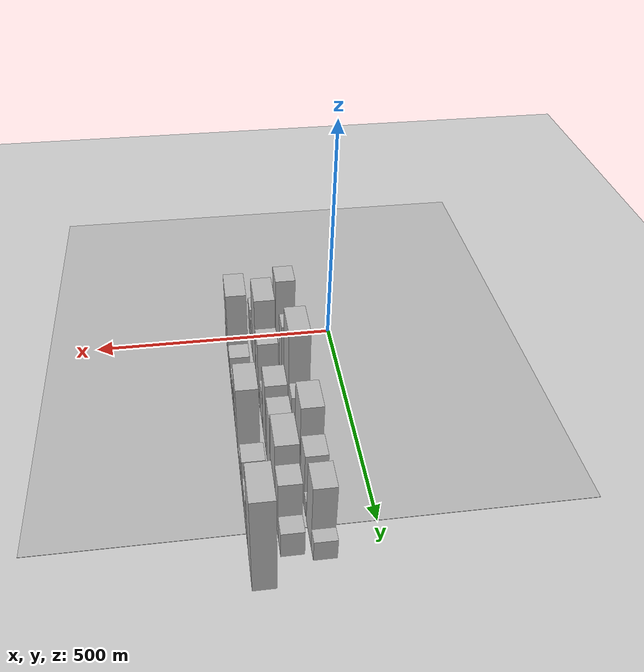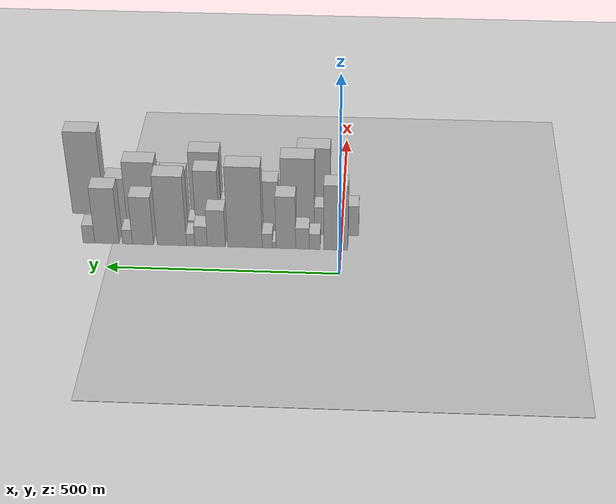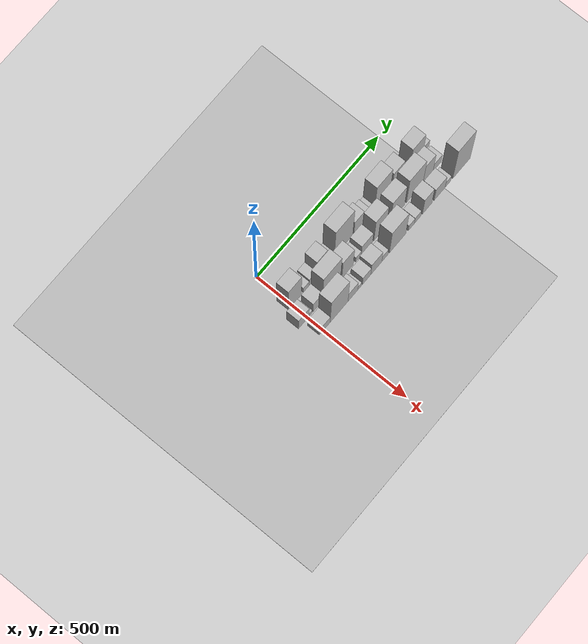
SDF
<sdf version="1.6">
 <world name="default">
  <include><name>ground_plane_1</name><uri>model://HANNAS_ground_plane</uri></include>
  <include>
   <name>ground_plane_2</name>
   <uri>model://HANNAS_ground_plane</uri>
   <pose>100 0 0  0 0 0</pose>
  </include>
  <model name="building_16">
   <static>1</static>
   <pose>100.0000 10.8693 0 0.000000 0.000000 0.000000</pose>
   <link name="link">
    <pose>0 0 87.00 0 0 0</pose>
    <collision name="collision"><geometry><box><size>40.0000 52.2997 174.0000</size></box></geometry></collision>
    <visual name="visual">
     <cast_shadows>0</cast_shadows>
     <geometry><box><size>40.0000 52.2997 174.0000</size></box></geometry>
     <material>
      <script>
       <uri>model://HANNAS_wall/materials/scripts</uri>
       <uri>model://HANNAS_wall/materials/textures</uri>
       <name>vrc/HANNAS_wall</name>
      </script>
     </material>
    </visual>
   </link>
  </model>
  <model name="building_17">
   <static>1</static>
   <pose>100.0000 56.9608 0 0.000000 0.000000 0.000000</pose>
   <link name="link">
    <pose>0 0 21.00 0 0 0</pose>
    <collision name="collision"><geometry><box><size>40.0000 23.8834 42.0000</size></box></geometry></collision>
    <visual name="visual">
     <cast_shadows>0</cast_shadows>
     <geometry><box><size>40.0000 23.8834 42.0000</size></box></geometry>
     <material>
      <script>
       <uri>model://HANNAS_wall/materials/scripts</uri>
       <uri>model://HANNAS_wall/materials/textures</uri>
       <name>vrc/HANNAS_wall</name>
      </script>
     </material>
    </visual>
   </link>
  </model>
  <model name="building_18">
   <static>1</static>
   <pose>100.0000 83.5557 0 0.000000 0.000000 0.000000</pose>
   <link name="link">
    <pose>0 0 28.50 0 0 0</pose>
    <collision name="collision"><geometry><box><size>40.0000 29.3063 57.0000</size></box></geometry></collision>
    <visual name="visual">
     <cast_shadows>0</cast_shadows>
     <geometry><box><size>40.0000 29.3063 57.0000</size></box></geometry>
     <material>
      <script>
       <uri>model://HANNAS_wall/materials/scripts</uri>
       <uri>model://HANNAS_wall/materials/textures</uri>
       <name>vrc/HANNAS_wall</name>
      </script>
     </material>
    </visual>
   </link>
  </model>
  <model name="building_19">
   <static>1</static>
   <pose>100.0000 119.6079 0 0.000000 0.000000 0.000000</pose>
   <link name="link">
    <pose>0 0 70.50 0 0 0</pose>
    <collision name="collision"><geometry><box><size>40.0000 42.7981 141.0000</size></box></geometry></collision>
    <visual name="visual">
     <cast_shadows>0</cast_shadows>
     <geometry><box><size>40.0000 42.7981 141.0000</size></box></geometry>
     <material>
      <script>
       <uri>model://HANNAS_wall/materials/scripts</uri>
       <uri>model://HANNAS_wall/materials/textures</uri>
       <name>vrc/HANNAS_wall</name>
      </script>
     </material>
    </visual>
   </link>
  </model>
  <model name="building_20">
   <static>1</static>
   <pose>100.0000 144.9795 0 0.000000 0.000000 0.000000</pose>
   <link name="link">
    <pose>0 0 9.00 0 0 0</pose>
    <collision name="collision"><geometry><box><size>40.0000 7.9451 18.0000</size></box></geometry></collision>
    <visual name="visual">
     <cast_shadows>0</cast_shadows>
     <geometry><box><size>40.0000 7.9451 18.0000</size></box></geometry>
     <material>
      <script>
       <uri>model://HANNAS_wall/materials/scripts</uri>
       <uri>model://HANNAS_wall/materials/textures</uri>
       <name>vrc/HANNAS_wall</name>
      </script>
     </material>
    </visual>
   </link>
  </model>
  <model name="building_21">
   <static>1</static>
   <pose>100.0000 160.0698 0 0.000000 0.000000 0.000000</pose>
   <link name="link">
    <pose>0 0 19.50 0 0 0</pose>
    <collision name="collision"><geometry><box><size>40.0000 22.2356 39.0000</size></box></geometry></collision>
    <visual name="visual">
     <cast_shadows>0</cast_shadows>
     <geometry><box><size>40.0000 22.2356 39.0000</size></box></geometry>
     <material>
      <script>
       <uri>model://HANNAS_wall/materials/scripts</uri>
       <uri>model://HANNAS_wall/materials/textures</uri>
       <name>vrc/HANNAS_wall</name>
      </script>
     </material>
    </visual>
   </link>
  </model>
  <model name="building_22">
   <static>1</static>
   <pose>100.0000 208.9474 0 0.000000 0.000000 0.000000</pose>
   <link name="link">
    <pose>0 0 108.00 0 0 0</pose>
    <collision name="collision"><geometry><box><size>40.0000 75.5195 216.0000</size></box></geometry></collision>
    <visual name="visual">
     <cast_shadows>0</cast_shadows>
     <geometry><box><size>40.0000 75.5195 216.0000</size></box></geometry>
     <material>
      <script>
       <uri>model://HANNAS_wall/materials/scripts</uri>
       <uri>model://HANNAS_wall/materials/textures</uri>
       <name>vrc/HANNAS_wall</name>
      </script>
     </material>
    </visual>
   </link>
  </model>
  <model name="building_23">
   <static>1</static>
   <pose>100.0000 271.4195 0 0.000000 0.000000 0.000000</pose>
   <link name="link">
    <pose>0 0 49.50 0 0 0</pose>
    <collision name="collision"><geometry><box><size>40.0000 39.4247 99.0000</size></box></geometry></collision>
    <visual name="visual">
     <cast_shadows>0</cast_shadows>
     <geometry><box><size>40.0000 39.4247 99.0000</size></box></geometry>
     <material>
      <script>
       <uri>model://HANNAS_wall/materials/scripts</uri>
       <uri>model://HANNAS_wall/materials/textures</uri>
       <name>vrc/HANNAS_wall</name>
      </script>
     </material>
    </visual>
   </link>
  </model>
  <model name="building_24">
   <static>1</static>
   <pose>100.0000 305.1238 0 0.000000 0.000000 0.000000</pose>
   <link name="link">
    <pose>0 0 27.00 0 0 0</pose>
    <collision name="collision"><geometry><box><size>40.0000 27.9839 54.0000</size></box></geometry></collision>
    <visual name="visual">
     <cast_shadows>0</cast_shadows>
     <geometry><box><size>40.0000 27.9839 54.0000</size></box></geometry>
     <material>
      <script>
       <uri>model://HANNAS_wall/materials/scripts</uri>
       <uri>model://HANNAS_wall/materials/textures</uri>
       <name>vrc/HANNAS_wall</name>
      </script>
     </material>
    </visual>
   </link>
  </model>
  <model name="building_25">
   <static>1</static>
   <pose>100.0000 328.0270 0 0.000000 0.000000 0.000000</pose>
   <link name="link">
    <pose>0 0 16.50 0 0 0</pose>
    <collision name="collision"><geometry><box><size>40.0000 17.8224 33.0000</size></box></geometry></collision>
    <visual name="visual">
     <cast_shadows>0</cast_shadows>
     <geometry><box><size>40.0000 17.8224 33.0000</size></box></geometry>
     <material>
      <script>
       <uri>model://HANNAS_wall/materials/scripts</uri>
       <uri>model://HANNAS_wall/materials/textures</uri>
       <name>vrc/HANNAS_wall</name>
      </script>
     </material>
    </visual>
   </link>
  </model>
  <model name="building_26">
   <static>1</static>
   <pose>100.0000 369.1102 0 0.000000 0.000000 0.000000</pose>
   <link name="link">
    <pose>0 0 93.00 0 0 0</pose>
    <collision name="collision"><geometry><box><size>40.0000 64.3441 186.0000</size></box></geometry></collision>
    <visual name="visual">
     <cast_shadows>0</cast_shadows>
     <geometry><box><size>40.0000 64.3441 186.0000</size></box></geometry>
     <material>
      <script>
       <uri>model://HANNAS_wall/materials/scripts</uri>
       <uri>model://HANNAS_wall/materials/textures</uri>
       <name>vrc/HANNAS_wall</name>
      </script>
     </material>
    </visual>
   </link>
  </model>
  <model name="building_27">
   <static>1</static>
   <pose>100.0000 432.4711 0 0.000000 0.000000 0.000000</pose>
   <link name="link">
    <pose>0 0 64.50 0 0 0</pose>
    <collision name="collision"><geometry><box><size>40.0000 46.3777 129.0000</size></box></geometry></collision>
    <visual name="visual">
     <cast_shadows>0</cast_shadows>
     <geometry><box><size>40.0000 46.3777 129.0000</size></box></geometry>
     <material>
      <script>
       <uri>model://HANNAS_wall/materials/scripts</uri>
       <uri>model://HANNAS_wall/materials/textures</uri>
       <name>vrc/HANNAS_wall</name>
      </script>
     </material>
    </visual>
   </link>
  </model>
  <model name="building_28">
   <static>1</static>
   <pose>100.0000 466.4804 0 0.000000 0.000000 0.000000</pose>
   <link name="link">
    <pose>0 0 19.50 0 0 0</pose>
    <collision name="collision"><geometry><box><size>40.0000 21.6409 39.0000</size></box></geometry></collision>
    <visual name="visual">
     <cast_shadows>0</cast_shadows>
     <geometry><box><size>40.0000 21.6409 39.0000</size></box></geometry>
     <material>
      <script>
       <uri>model://HANNAS_wall/materials/scripts</uri>
       <uri>model://HANNAS_wall/materials/textures</uri>
       <name>vrc/HANNAS_wall</name>
      </script>
     </material>
    </visual>
   </link>
  </model>
  <model name="building_29">
   <static>1</static>
   <pose>100.0000 511.8873 0 0.000000 0.000000 0.000000</pose>
   <link name="link">
    <pose>0 0 75.00 0 0 0</pose>
    <collision name="collision"><geometry><box><size>40.0000 53.1729 150.0000</size></box></geometry></collision>
    <visual name="visual">
     <cast_shadows>0</cast_shadows>
     <geometry><box><size>40.0000 53.1729 150.0000</size></box></geometry>
     <material>
      <script>
       <uri>model://HANNAS_wall/materials/scripts</uri>
       <uri>model://HANNAS_wall/materials/textures</uri>
       <name>vrc/HANNAS_wall</name>
      </script>
     </material>
    </visual>
   </link>
  </model>
  <model name="building_30">
   <static>1</static>
   <pose>100.0000 551.2368 0 0.000000 0.000000 0.000000</pose>
   <link name="link">
    <pose>0 0 24.00 0 0 0</pose>
    <collision name="collision"><geometry><box><size>40.0000 25.5261 48.0000</size></box></geometry></collision>
    <visual name="visual">
     <cast_shadows>0</cast_shadows>
     <geometry><box><size>40.0000 25.5261 48.0000</size></box></geometry>
     <material>
      <script>
       <uri>model://HANNAS_wall/materials/scripts</uri>
       <uri>model://HANNAS_wall/materials/textures</uri>
       <name>vrc/HANNAS_wall</name>
      </script>
     </material>
    </visual>
   </link>
  </model>
  <model name="building_46">
   <static>1</static>
   <pose>152.0000 -15.9616 0 0.000000 0.000000 0.000000</pose>
   <link name="link">
    <pose>0 0 40.50 0 0 0</pose>
    <collision name="collision"><geometry><box><size>40.0000 42.7795 81.0000</size></box></geometry></collision>
    <visual name="visual">
     <cast_shadows>0</cast_shadows>
     <geometry><box><size>40.0000 42.7795 81.0000</size></box></geometry>
     <material>
      <script>
       <uri>model://HANNAS_wall/materials/scripts</uri>
       <uri>model://HANNAS_wall/materials/textures</uri>
       <name>vrc/HANNAS_wall</name>
      </script>
     </material>
    </visual>
   </link>
  </model>
  <model name="building_47">
   <static>1</static>
   <pose>152.0000 11.9285 0 0.000000 0.000000 0.000000</pose>
   <link name="link">
    <pose>0 0 13.50 0 0 0</pose>
    <collision name="collision"><geometry><box><size>40.0000 13.0005 27.0000</size></box></geometry></collision>
    <visual name="visual">
     <cast_shadows>0</cast_shadows>
     <geometry><box><size>40.0000 13.0005 27.0000</size></box></geometry>
     <material>
      <script>
       <uri>model://HANNAS_wall/materials/scripts</uri>
       <uri>model://HANNAS_wall/materials/textures</uri>
       <name>vrc/HANNAS_wall</name>
      </script>
     </material>
    </visual>
   </link>
  </model>
  <model name="building_48">
   <static>1</static>
   <pose>152.0000 40.6901 0 0.000000 0.000000 0.000000</pose>
   <link name="link">
    <pose>0 0 37.50 0 0 0</pose>
    <collision name="collision"><geometry><box><size>40.0000 38.5228 75.0000</size></box></geometry></collision>
    <visual name="visual">
     <cast_shadows>0</cast_shadows>
     <geometry><box><size>40.0000 38.5228 75.0000</size></box></geometry>
     <material>
      <script>
       <uri>model://HANNAS_wall/materials/scripts</uri>
       <uri>model://HANNAS_wall/materials/textures</uri>
       <name>vrc/HANNAS_wall</name>
      </script>
     </material>
    </visual>
   </link>
  </model>
  <model name="building_49">
   <static>1</static>
   <pose>152.0000 96.4202 0 0.000000 0.000000 0.000000</pose>
   <link name="link">
    <pose>0 0 102.00 0 0 0</pose>
    <collision name="collision"><geometry><box><size>40.0000 72.9375 204.0000</size></box></geometry></collision>
    <visual name="visual">
     <cast_shadows>0</cast_shadows>
     <geometry><box><size>40.0000 72.9375 204.0000</size></box></geometry>
     <material>
      <script>
       <uri>model://HANNAS_wall/materials/scripts</uri>
       <uri>model://HANNAS_wall/materials/textures</uri>
       <name>vrc/HANNAS_wall</name>
      </script>
     </material>
    </visual>
   </link>
  </model>
  <model name="building_50">
   <static>1</static>
   <pose>152.0000 162.1256 0 0.000000 0.000000 0.000000</pose>
   <link name="link">
    <pose>0 0 70.50 0 0 0</pose>
    <collision name="collision"><geometry><box><size>40.0000 46.4732 141.0000</size></box></geometry></collision>
    <visual name="visual">
     <cast_shadows>0</cast_shadows>
     <geometry><box><size>40.0000 46.4732 141.0000</size></box></geometry>
     <material>
      <script>
       <uri>model://HANNAS_wall/materials/scripts</uri>
       <uri>model://HANNAS_wall/materials/textures</uri>
       <name>vrc/HANNAS_wall</name>
      </script>
     </material>
    </visual>
   </link>
  </model>
  <model name="building_51">
   <static>1</static>
   <pose>152.0000 206.7316 0 0.000000 0.000000 0.000000</pose>
   <link name="link">
    <pose>0 0 19.50 0 0 0</pose>
    <collision name="collision"><geometry><box><size>40.0000 22.7387 39.0000</size></box></geometry></collision>
    <visual name="visual">
     <cast_shadows>0</cast_shadows>
     <geometry><box><size>40.0000 22.7387 39.0000</size></box></geometry>
     <material>
      <script>
       <uri>model://HANNAS_wall/materials/scripts</uri>
       <uri>model://HANNAS_wall/materials/textures</uri>
       <name>vrc/HANNAS_wall</name>
      </script>
     </material>
    </visual>
   </link>
  </model>
  <model name="building_52">
   <static>1</static>
   <pose>152.0000 241.5072 0 0.000000 0.000000 0.000000</pose>
   <link name="link">
    <pose>0 0 40.50 0 0 0</pose>
    <collision name="collision"><geometry><box><size>40.0000 46.8126 81.0000</size></box></geometry></collision>
    <visual name="visual">
     <cast_shadows>0</cast_shadows>
     <geometry><box><size>40.0000 46.8126 81.0000</size></box></geometry>
     <material>
      <script>
       <uri>model://HANNAS_wall/materials/scripts</uri>
       <uri>model://HANNAS_wall/materials/textures</uri>
       <name>vrc/HANNAS_wall</name>
      </script>
     </material>
    </visual>
   </link>
  </model>
  <model name="building_53">
   <static>1</static>
   <pose>152.0000 295.9425 0 0.000000 0.000000 0.000000</pose>
   <link name="link">
    <pose>0 0 82.50 0 0 0</pose>
    <collision name="collision"><geometry><box><size>40.0000 52.0578 165.0000</size></box></geometry></collision>
    <visual name="visual">
     <cast_shadows>0</cast_shadows>
     <geometry><box><size>40.0000 52.0578 165.0000</size></box></geometry>
     <material>
      <script>
       <uri>model://HANNAS_wall/materials/scripts</uri>
       <uri>model://HANNAS_wall/materials/textures</uri>
       <name>vrc/HANNAS_wall</name>
      </script>
     </material>
    </visual>
   </link>
  </model>
  <model name="building_54">
   <static>1</static>
   <pose>152.0000 330.5413 0 0.000000 0.000000 0.000000</pose>
   <link name="link">
    <pose>0 0 15.00 0 0 0</pose>
    <collision name="collision"><geometry><box><size>40.0000 17.1399 30.0000</size></box></geometry></collision>
    <visual name="visual">
     <cast_shadows>0</cast_shadows>
     <geometry><box><size>40.0000 17.1399 30.0000</size></box></geometry>
     <material>
      <script>
       <uri>model://HANNAS_wall/materials/scripts</uri>
       <uri>model://HANNAS_wall/materials/textures</uri>
       <name>vrc/HANNAS_wall</name>
      </script>
     </material>
    </visual>
   </link>
  </model>
  <model name="building_55">
   <static>1</static>
   <pose>152.0000 368.0218 0 0.000000 0.000000 0.000000</pose>
   <link name="link">
    <pose>0 0 78.00 0 0 0</pose>
    <collision name="collision"><geometry><box><size>40.0000 57.8211 156.0000</size></box></geometry></collision>
    <visual name="visual">
     <cast_shadows>0</cast_shadows>
     <geometry><box><size>40.0000 57.8211 156.0000</size></box></geometry>
     <material>
      <script>
       <uri>model://HANNAS_wall/materials/scripts</uri>
       <uri>model://HANNAS_wall/materials/textures</uri>
       <name>vrc/HANNAS_wall</name>
      </script>
     </material>
    </visual>
   </link>
  </model>
  <model name="building_56">
   <static>1</static>
   <pose>152.0000 439.4487 0 0.000000 0.000000 0.000000</pose>
   <link name="link">
    <pose>0 0 91.50 0 0 0</pose>
    <collision name="collision"><geometry><box><size>40.0000 69.0328 183.0000</size></box></geometry></collision>
    <visual name="visual">
     <cast_shadows>0</cast_shadows>
     <geometry><box><size>40.0000 69.0328 183.0000</size></box></geometry>
     <material>
      <script>
       <uri>model://HANNAS_wall/materials/scripts</uri>
       <uri>model://HANNAS_wall/materials/textures</uri>
       <name>vrc/HANNAS_wall</name>
      </script>
     </material>
    </visual>
   </link>
  </model>
  <model name="building_57">
   <static>1</static>
   <pose>152.0000 494.9462 0 0.000000 0.000000 0.000000</pose>
   <link name="link">
    <pose>0 0 69.00 0 0 0</pose>
    <collision name="collision"><geometry><box><size>40.0000 41.9621 138.0000</size></box></geometry></collision>
    <visual name="visual">
     <cast_shadows>0</cast_shadows>
     <geometry><box><size>40.0000 41.9621 138.0000</size></box></geometry>
     <material>
      <script>
       <uri>model://HANNAS_wall/materials/scripts</uri>
       <uri>model://HANNAS_wall/materials/textures</uri>
       <name>vrc/HANNAS_wall</name>
      </script>
     </material>
    </visual>
   </link>
  </model>
  <model name="building_58">
   <static>1</static>
   <pose>152.0000 533.2655 0 0.000000 0.000000 0.000000</pose>
   <link name="link">
    <pose>0 0 30.00 0 0 0</pose>
    <collision name="collision"><geometry><box><size>40.0000 34.6766 60.0000</size></box></geometry></collision>
    <visual name="visual">
     <cast_shadows>0</cast_shadows>
     <geometry><box><size>40.0000 34.6766 60.0000</size></box></geometry>
     <material>
      <script>
       <uri>model://HANNAS_wall/materials/scripts</uri>
       <uri>model://HANNAS_wall/materials/textures</uri>
       <name>vrc/HANNAS_wall</name>
      </script>
     </material>
    </visual>
   </link>
  </model>
  <model name="building_73">
   <static>1</static>
   <pose>204.0000 -10.4134 0 0.000000 0.000000 0.000000</pose>
   <link name="link">
    <pose>0 0 12.00 0 0 0</pose>
    <collision name="collision"><geometry><box><size>40.0000 10.3255 24.0000</size></box></geometry></collision>
    <visual name="visual">
     <cast_shadows>0</cast_shadows>
     <geometry><box><size>40.0000 10.3255 24.0000</size></box></geometry>
     <material>
      <script>
       <uri>model://HANNAS_wall/materials/scripts</uri>
       <uri>model://HANNAS_wall/materials/textures</uri>
       <name>vrc/HANNAS_wall</name>
      </script>
     </material>
    </visual>
   </link>
  </model>
  <model name="building_74">
   <static>1</static>
   <pose>204.0000 11.2459 0 0.000000 0.000000 0.000000</pose>
   <link name="link">
    <pose>0 0 28.50 0 0 0</pose>
    <collision name="collision"><geometry><box><size>40.0000 32.9931 57.0000</size></box></geometry></collision>
    <visual name="visual">
     <cast_shadows>0</cast_shadows>
     <geometry><box><size>40.0000 32.9931 57.0000</size></box></geometry>
     <material>
      <script>
       <uri>model://HANNAS_wall/materials/scripts</uri>
       <uri>model://HANNAS_wall/materials/textures</uri>
       <name>vrc/HANNAS_wall</name>
      </script>
     </material>
    </visual>
   </link>
  </model>
  <model name="building_75">
   <static>1</static>
   <pose>204.0000 63.8894 0 0.000000 0.000000 0.000000</pose>
   <link name="link">
    <pose>0 0 97.50 0 0 0</pose>
    <collision name="collision"><geometry><box><size>40.0000 72.2939 195.0000</size></box></geometry></collision>
    <visual name="visual">
     <cast_shadows>0</cast_shadows>
     <geometry><box><size>40.0000 72.2939 195.0000</size></box></geometry>
     <material>
      <script>
       <uri>model://HANNAS_wall/materials/scripts</uri>
       <uri>model://HANNAS_wall/materials/textures</uri>
       <name>vrc/HANNAS_wall</name>
      </script>
     </material>
    </visual>
   </link>
  </model>
  <model name="building_76">
   <static>1</static>
   <pose>204.0000 120.1993 0 0.000000 0.000000 0.000000</pose>
   <link name="link">
    <pose>0 0 36.00 0 0 0</pose>
    <collision name="collision"><geometry><box><size>40.0000 40.3258 72.0000</size></box></geometry></collision>
    <visual name="visual">
     <cast_shadows>0</cast_shadows>
     <geometry><box><size>40.0000 40.3258 72.0000</size></box></geometry>
     <material>
      <script>
       <uri>model://HANNAS_wall/materials/scripts</uri>
       <uri>model://HANNAS_wall/materials/textures</uri>
       <name>vrc/HANNAS_wall</name>
      </script>
     </material>
    </visual>
   </link>
  </model>
  <model name="building_77">
   <static>1</static>
   <pose>204.0000 148.2552 0 0.000000 0.000000 0.000000</pose>
   <link name="link">
    <pose>0 0 15.00 0 0 0</pose>
    <collision name="collision"><geometry><box><size>40.0000 15.7862 30.0000</size></box></geometry></collision>
    <visual name="visual">
     <cast_shadows>0</cast_shadows>
     <geometry><box><size>40.0000 15.7862 30.0000</size></box></geometry>
     <material>
      <script>
       <uri>model://HANNAS_wall/materials/scripts</uri>
       <uri>model://HANNAS_wall/materials/textures</uri>
       <name>vrc/HANNAS_wall</name>
      </script>
     </material>
    </visual>
   </link>
  </model>
  <model name="building_78">
   <static>1</static>
   <pose>204.0000 176.3835 0 0.000000 0.000000 0.000000</pose>
   <link name="link">
    <pose>0 0 31.50 0 0 0</pose>
    <collision name="collision"><geometry><box><size>40.0000 34.4703 63.0000</size></box></geometry></collision>
    <visual name="visual">
     <cast_shadows>0</cast_shadows>
     <geometry><box><size>40.0000 34.4703 63.0000</size></box></geometry>
     <material>
      <script>
       <uri>model://HANNAS_wall/materials/scripts</uri>
       <uri>model://HANNAS_wall/materials/textures</uri>
       <name>vrc/HANNAS_wall</name>
      </script>
     </material>
    </visual>
   </link>
  </model>
  <model name="building_79">
   <static>1</static>
   <pose>204.0000 216.2301 0 0.000000 0.000000 0.000000</pose>
   <link name="link">
    <pose>0 0 45.00 0 0 0</pose>
    <collision name="collision"><geometry><box><size>40.0000 45.2229 90.0000</size></box></geometry></collision>
    <visual name="visual">
     <cast_shadows>0</cast_shadows>
     <geometry><box><size>40.0000 45.2229 90.0000</size></box></geometry>
     <material>
      <script>
       <uri>model://HANNAS_wall/materials/scripts</uri>
       <uri>model://HANNAS_wall/materials/textures</uri>
       <name>vrc/HANNAS_wall</name>
      </script>
     </material>
    </visual>
   </link>
  </model>
  <model name="building_80">
   <static>1</static>
   <pose>204.0000 251.4858 0 0.000000 0.000000 0.000000</pose>
   <link name="link">
    <pose>0 0 24.00 0 0 0</pose>
    <collision name="collision"><geometry><box><size>40.0000 25.2884 48.0000</size></box></geometry></collision>
    <visual name="visual">
     <cast_shadows>0</cast_shadows>
     <geometry><box><size>40.0000 25.2884 48.0000</size></box></geometry>
     <material>
      <script>
       <uri>model://HANNAS_wall/materials/scripts</uri>
       <uri>model://HANNAS_wall/materials/textures</uri>
       <name>vrc/HANNAS_wall</name>
      </script>
     </material>
    </visual>
   </link>
  </model>
  <model name="building_81">
   <static>1</static>
   <pose>204.0000 304.1415 0 0.000000 0.000000 0.000000</pose>
   <link name="link">
    <pose>0 0 88.50 0 0 0</pose>
    <collision name="collision"><geometry><box><size>40.0000 68.0230 177.0000</size></box></geometry></collision>
    <visual name="visual">
     <cast_shadows>0</cast_shadows>
     <geometry><box><size>40.0000 68.0230 177.0000</size></box></geometry>
     <material>
      <script>
       <uri>model://HANNAS_wall/materials/scripts</uri>
       <uri>model://HANNAS_wall/materials/textures</uri>
       <name>vrc/HANNAS_wall</name>
      </script>
     </material>
    </visual>
   </link>
  </model>
  <model name="building_82">
   <static>1</static>
   <pose>204.0000 360.9715 0 0.000000 0.000000 0.000000</pose>
   <link name="link">
    <pose>0 0 22.50 0 0 0</pose>
    <collision name="collision"><geometry><box><size>40.0000 25.6371 45.0000</size></box></geometry></collision>
    <visual name="visual">
     <cast_shadows>0</cast_shadows>
     <geometry><box><size>40.0000 25.6371 45.0000</size></box></geometry>
     <material>
      <script>
       <uri>model://HANNAS_wall/materials/scripts</uri>
       <uri>model://HANNAS_wall/materials/textures</uri>
       <name>vrc/HANNAS_wall</name>
      </script>
     </material>
    </visual>
   </link>
  </model>
  <model name="building_83">
   <static>1</static>
   <pose>204.0000 386.8237 0 0.000000 0.000000 0.000000</pose>
   <link name="link">
    <pose>0 0 24.00 0 0 0</pose>
    <collision name="collision"><geometry><box><size>40.0000 26.0672 48.0000</size></box></geometry></collision>
    <visual name="visual">
     <cast_shadows>0</cast_shadows>
     <geometry><box><size>40.0000 26.0672 48.0000</size></box></geometry>
     <material>
      <script>
       <uri>model://HANNAS_wall/materials/scripts</uri>
       <uri>model://HANNAS_wall/materials/textures</uri>
       <name>vrc/HANNAS_wall</name>
      </script>
     </material>
    </visual>
   </link>
  </model>
  <model name="building_84">
   <static>1</static>
   <pose>204.0000 426.7740 0 0.000000 0.000000 0.000000</pose>
   <link name="link">
    <pose>0 0 60.00 0 0 0</pose>
    <collision name="collision"><geometry><box><size>40.0000 39.8334 120.0000</size></box></geometry></collision>
    <visual name="visual">
     <cast_shadows>0</cast_shadows>
     <geometry><box><size>40.0000 39.8334 120.0000</size></box></geometry>
     <material>
      <script>
       <uri>model://HANNAS_wall/materials/scripts</uri>
       <uri>model://HANNAS_wall/materials/textures</uri>
       <name>vrc/HANNAS_wall</name>
      </script>
     </material>
    </visual>
   </link>
  </model>
  <model name="building_85">
   <static>1</static>
   <pose>204.0000 478.6009 0 0.000000 0.000000 0.000000</pose>
   <link name="link">
    <pose>0 0 45.00 0 0 0</pose>
    <collision name="collision"><geometry><box><size>40.0000 45.8204 90.0000</size></box></geometry></collision>
    <visual name="visual">
     <cast_shadows>0</cast_shadows>
     <geometry><box><size>40.0000 45.8204 90.0000</size></box></geometry>
     <material>
      <script>
       <uri>model://HANNAS_wall/materials/scripts</uri>
       <uri>model://HANNAS_wall/materials/textures</uri>
       <name>vrc/HANNAS_wall</name>
      </script>
     </material>
    </visual>
   </link>
  </model>
  <model name="building_86">
   <static>1</static>
   <pose>204.0000 513.5078 0 0.000000 0.000000 0.000000</pose>
   <link name="link">
    <pose>0 0 21.00 0 0 0</pose>
    <collision name="collision"><geometry><box><size>40.0000 23.9932 42.0000</size></box></geometry></collision>
    <visual name="visual">
     <cast_shadows>0</cast_shadows>
     <geometry><box><size>40.0000 23.9932 42.0000</size></box></geometry>
     <material>
      <script>
       <uri>model://HANNAS_wall/materials/scripts</uri>
       <uri>model://HANNAS_wall/materials/textures</uri>
       <name>vrc/HANNAS_wall</name>
      </script>
     </material>
    </visual>
   </link>
  </model>
  <model name="building_87">
   <static>1</static>
   <pose>204.0000 570.1229 0 0.000000 0.000000 0.000000</pose>
   <link name="link">
    <pose>0 0 111.00 0 0 0</pose>
    <collision name="collision"><geometry><box><size>40.0000 73.2370 222.0000</size></box></geometry></collision>
    <visual name="visual">
     <cast_shadows>0</cast_shadows>
     <geometry><box><size>40.0000 73.2370 222.0000</size></box></geometry>
     <material>
      <script>
       <uri>model://HANNAS_wall/materials/scripts</uri>
       <uri>model://HANNAS_wall/materials/textures</uri>
       <name>vrc/HANNAS_wall</name>
      </script>
     </material>
    </visual>
   </link>
  </model>
 </world>
</sdf>
